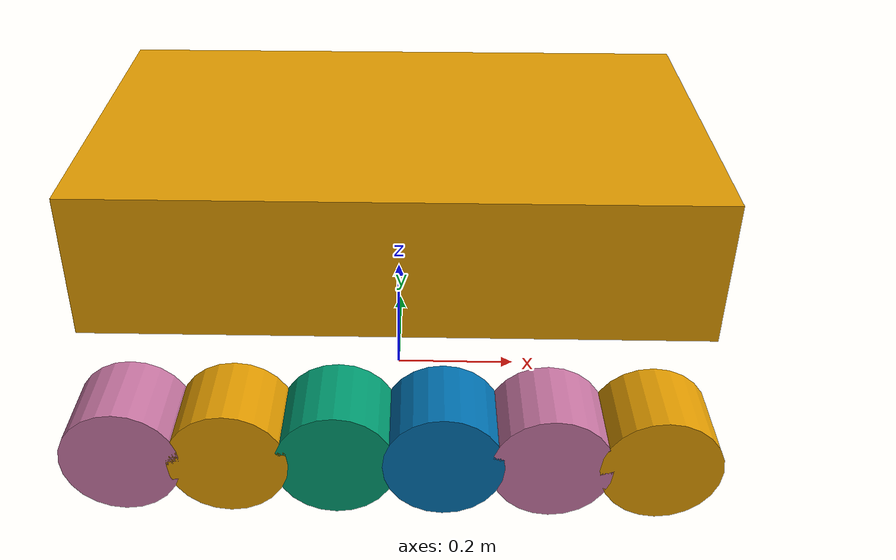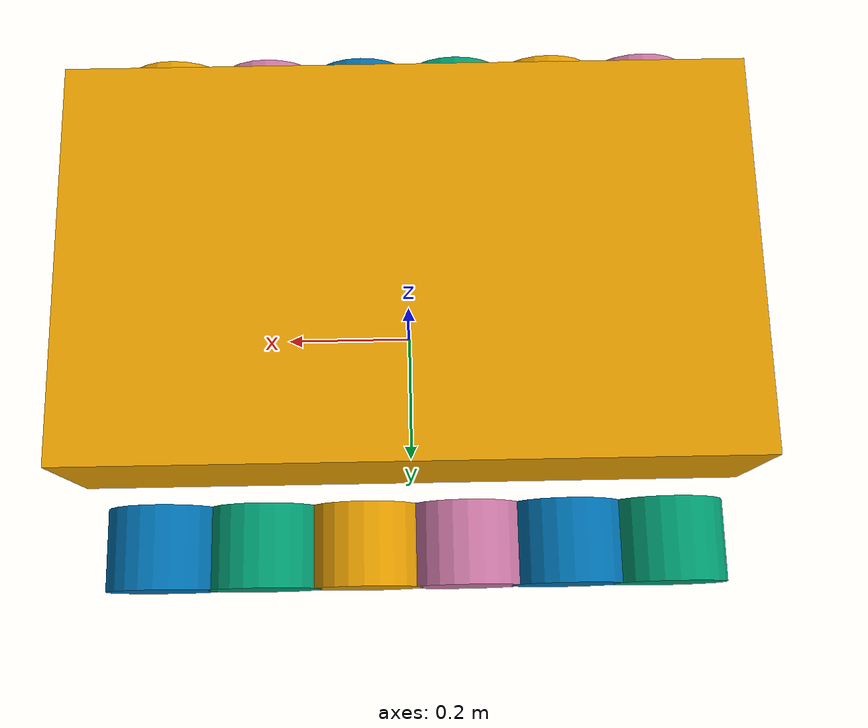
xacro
<?xml version='1.0'?>
<robot xmlns:xacro='http://www.ros.org/wiki/xacro' name='garden_tracked_bogie'>
  <xacro:property name='variant' value='tracked_bogie'/>
  <xacro:property name='mass_kg' value='65.0'/>
  <xacro:property name='track_gauge' value='0.7'/>
  <xacro:property name='wheel_radius' value='0.085'/>
  <xacro:property name='body_clearance' value='0.27'/>
  <link name='base_link'>
    <visual name='TRK3-BASE-001_visual'><origin xyz='0 0 0.36' rpy='0 0 0'/><geometry><box size='0.92 0.54 0.22'/></geometry></visual>
    <collision name='TRK3-BASE-001_collision'><origin xyz='0 0 0.36' rpy='0 0 0'/><geometry><box size='0.78 0.46 0.18'/></geometry></collision>
    <inertial><origin xyz='0 0 0.35' rpy='0 0 0'/><mass value='52.4'/><inertia ixx='1.4846666666666668' ixy='0' ixz='0' iyy='3.9072933333333335' iyz='0' izz='4.969266666666667'/></inertial>
  </link>
  <link name='left_carrier_0'/>
  <joint name='left_suspension_0' type='prismatic'><parent link='base_link'/><child link='left_carrier_0'/><origin xyz='-0.38 0.35 0.13' rpy='0 0 0'/><axis xyz='0 0 1'/><limit lower='-0.07' upper='0.07' effort='2500' velocity='1.5'/></joint>
  <link name='left_wheel'><visual name='TRK3-ROLLER-SUSP-001_visual_left_0'><geometry><cylinder radius='0.085' length='0.12'/></geometry></visual><collision name='TRK3-ROLLER-SUSP-001_collision_left_0'><geometry><cylinder radius='0.085' length='0.12'/></geometry></collision></link>
  <joint name='left_joint' type='continuous'><parent link='left_carrier_0'/><child link='left_wheel'/><origin xyz='0 0 0' rpy='1.57079632679 0 0'/><axis xyz='0 0 -1'/></joint>
  <link name='left_carrier_1'/>
  <joint name='left_suspension_1' type='prismatic'><parent link='base_link'/><child link='left_carrier_1'/><origin xyz='-0.23 0.35 0.13' rpy='0 0 0'/><axis xyz='0 0 1'/><limit lower='-0.07' upper='0.07' effort='2500' velocity='1.5'/></joint>
  <link name='left_wheel_1'><visual name='TRK3-ROLLER-SUSP-001_visual_left_1'><geometry><cylinder radius='0.085' length='0.12'/></geometry></visual><collision name='TRK3-ROLLER-SUSP-001_collision_left_1'><geometry><cylinder radius='0.085' length='0.12'/></geometry></collision></link>
  <joint name='left_joint_1' type='continuous'><parent link='left_carrier_1'/><child link='left_wheel_1'/><origin xyz='0 0 0' rpy='1.57079632679 0 0'/><axis xyz='0 0 -1'/></joint>
  <link name='left_carrier_2'/>
  <joint name='left_suspension_2' type='prismatic'><parent link='base_link'/><child link='left_carrier_2'/><origin xyz='-0.08 0.35 0.13' rpy='0 0 0'/><axis xyz='0 0 1'/><limit lower='-0.07' upper='0.07' effort='2500' velocity='1.5'/></joint>
  <link name='left_wheel_2'><visual name='TRK3-ROLLER-SUSP-001_visual_left_2'><geometry><cylinder radius='0.085' length='0.12'/></geometry></visual><collision name='TRK3-ROLLER-SUSP-001_collision_left_2'><geometry><cylinder radius='0.085' length='0.12'/></geometry></collision></link>
  <joint name='left_joint_2' type='continuous'><parent link='left_carrier_2'/><child link='left_wheel_2'/><origin xyz='0 0 0' rpy='1.57079632679 0 0'/><axis xyz='0 0 -1'/></joint>
  <link name='left_carrier_3'/>
  <joint name='left_suspension_3' type='prismatic'><parent link='base_link'/><child link='left_carrier_3'/><origin xyz='0.07 0.35 0.13' rpy='0 0 0'/><axis xyz='0 0 1'/><limit lower='-0.07' upper='0.07' effort='2500' velocity='1.5'/></joint>
  <link name='left_wheel_3'><visual name='TRK3-ROLLER-SUSP-001_visual_left_3'><geometry><cylinder radius='0.085' length='0.12'/></geometry></visual><collision name='TRK3-ROLLER-SUSP-001_collision_left_3'><geometry><cylinder radius='0.085' length='0.12'/></geometry></collision></link>
  <joint name='left_joint_3' type='continuous'><parent link='left_carrier_3'/><child link='left_wheel_3'/><origin xyz='0 0 0' rpy='1.57079632679 0 0'/><axis xyz='0 0 -1'/></joint>
  <link name='left_carrier_4'/>
  <joint name='left_suspension_4' type='prismatic'><parent link='base_link'/><child link='left_carrier_4'/><origin xyz='0.22 0.35 0.13' rpy='0 0 0'/><axis xyz='0 0 1'/><limit lower='-0.07' upper='0.07' effort='2500' velocity='1.5'/></joint>
  <link name='left_wheel_4'><visual name='TRK3-ROLLER-SUSP-001_visual_left_4'><geometry><cylinder radius='0.085' length='0.12'/></geometry></visual><collision name='TRK3-ROLLER-SUSP-001_collision_left_4'><geometry><cylinder radius='0.085' length='0.12'/></geometry></collision></link>
  <joint name='left_joint_4' type='continuous'><parent link='left_carrier_4'/><child link='left_wheel_4'/><origin xyz='0 0 0' rpy='1.57079632679 0 0'/><axis xyz='0 0 -1'/></joint>
  <link name='left_carrier_5'/>
  <joint name='left_suspension_5' type='prismatic'><parent link='base_link'/><child link='left_carrier_5'/><origin xyz='0.37 0.35 0.13' rpy='0 0 0'/><axis xyz='0 0 1'/><limit lower='-0.07' upper='0.07' effort='2500' velocity='1.5'/></joint>
  <link name='left_wheel_5'><visual name='TRK3-ROLLER-SUSP-001_visual_left_5'><geometry><cylinder radius='0.085' length='0.12'/></geometry></visual><collision name='TRK3-ROLLER-SUSP-001_collision_left_5'><geometry><cylinder radius='0.085' length='0.12'/></geometry></collision></link>
  <joint name='left_joint_5' type='continuous'><parent link='left_carrier_5'/><child link='left_wheel_5'/><origin xyz='0 0 0' rpy='1.57079632679 0 0'/><axis xyz='0 0 -1'/></joint>
  <link name='right_carrier_0'/>
  <joint name='right_suspension_0' type='prismatic'><parent link='base_link'/><child link='right_carrier_0'/><origin xyz='-0.38 -0.35 0.13' rpy='0 0 0'/><axis xyz='0 0 1'/><limit lower='-0.07' upper='0.07' effort='2500' velocity='1.5'/></joint>
  <link name='right_wheel'><visual name='TRK3-ROLLER-SUSP-001_visual_right_0'><geometry><cylinder radius='0.085' length='0.12'/></geometry></visual><collision name='TRK3-ROLLER-SUSP-001_collision_right_0'><geometry><cylinder radius='0.085' length='0.12'/></geometry></collision></link>
  <joint name='right_joint' type='continuous'><parent link='right_carrier_0'/><child link='right_wheel'/><origin xyz='0 0 0' rpy='1.57079632679 0 0'/><axis xyz='0 0 -1'/></joint>
  <link name='right_carrier_1'/>
  <joint name='right_suspension_1' type='prismatic'><parent link='base_link'/><child link='right_carrier_1'/><origin xyz='-0.23 -0.35 0.13' rpy='0 0 0'/><axis xyz='0 0 1'/><limit lower='-0.07' upper='0.07' effort='2500' velocity='1.5'/></joint>
  <link name='right_wheel_1'><visual name='TRK3-ROLLER-SUSP-001_visual_right_1'><geometry><cylinder radius='0.085' length='0.12'/></geometry></visual><collision name='TRK3-ROLLER-SUSP-001_collision_right_1'><geometry><cylinder radius='0.085' length='0.12'/></geometry></collision></link>
  <joint name='right_joint_1' type='continuous'><parent link='right_carrier_1'/><child link='right_wheel_1'/><origin xyz='0 0 0' rpy='1.57079632679 0 0'/><axis xyz='0 0 -1'/></joint>
  <link name='right_carrier_2'/>
  <joint name='right_suspension_2' type='prismatic'><parent link='base_link'/><child link='right_carrier_2'/><origin xyz='-0.08 -0.35 0.13' rpy='0 0 0'/><axis xyz='0 0 1'/><limit lower='-0.07' upper='0.07' effort='2500' velocity='1.5'/></joint>
  <link name='right_wheel_2'><visual name='TRK3-ROLLER-SUSP-001_visual_right_2'><geometry><cylinder radius='0.085' length='0.12'/></geometry></visual><collision name='TRK3-ROLLER-SUSP-001_collision_right_2'><geometry><cylinder radius='0.085' length='0.12'/></geometry></collision></link>
  <joint name='right_joint_2' type='continuous'><parent link='right_carrier_2'/><child link='right_wheel_2'/><origin xyz='0 0 0' rpy='1.57079632679 0 0'/><axis xyz='0 0 -1'/></joint>
  <link name='right_carrier_3'/>
  <joint name='right_suspension_3' type='prismatic'><parent link='base_link'/><child link='right_carrier_3'/><origin xyz='0.07 -0.35 0.13' rpy='0 0 0'/><axis xyz='0 0 1'/><limit lower='-0.07' upper='0.07' effort='2500' velocity='1.5'/></joint>
  <link name='right_wheel_3'><visual name='TRK3-ROLLER-SUSP-001_visual_right_3'><geometry><cylinder radius='0.085' length='0.12'/></geometry></visual><collision name='TRK3-ROLLER-SUSP-001_collision_right_3'><geometry><cylinder radius='0.085' length='0.12'/></geometry></collision></link>
  <joint name='right_joint_3' type='continuous'><parent link='right_carrier_3'/><child link='right_wheel_3'/><origin xyz='0 0 0' rpy='1.57079632679 0 0'/><axis xyz='0 0 -1'/></joint>
  <link name='right_carrier_4'/>
  <joint name='right_suspension_4' type='prismatic'><parent link='base_link'/><child link='right_carrier_4'/><origin xyz='0.22 -0.35 0.13' rpy='0 0 0'/><axis xyz='0 0 1'/><limit lower='-0.07' upper='0.07' effort='2500' velocity='1.5'/></joint>
  <link name='right_wheel_4'><visual name='TRK3-ROLLER-SUSP-001_visual_right_4'><geometry><cylinder radius='0.085' length='0.12'/></geometry></visual><collision name='TRK3-ROLLER-SUSP-001_collision_right_4'><geometry><cylinder radius='0.085' length='0.12'/></geometry></collision></link>
  <joint name='right_joint_4' type='continuous'><parent link='right_carrier_4'/><child link='right_wheel_4'/><origin xyz='0 0 0' rpy='1.57079632679 0 0'/><axis xyz='0 0 -1'/></joint>
  <link name='right_carrier_5'/>
  <joint name='right_suspension_5' type='prismatic'><parent link='base_link'/><child link='right_carrier_5'/><origin xyz='0.37 -0.35 0.13' rpy='0 0 0'/><axis xyz='0 0 1'/><limit lower='-0.07' upper='0.07' effort='2500' velocity='1.5'/></joint>
  <link name='right_wheel_5'><visual name='TRK3-ROLLER-SUSP-001_visual_right_5'><geometry><cylinder radius='0.085' length='0.12'/></geometry></visual><collision name='TRK3-ROLLER-SUSP-001_collision_right_5'><geometry><cylinder radius='0.085' length='0.12'/></geometry></collision></link>
  <joint name='right_joint_5' type='continuous'><parent link='right_carrier_5'/><child link='right_wheel_5'/><origin xyz='0 0 0' rpy='1.57079632679 0 0'/><axis xyz='0 0 -1'/></joint>
  <!-- Future CAD references: TRK3-BASE-001, TRK3-BELT-VIS-001, TRK3-ROLLER-SUSP-001. Visual and collision geometry remain separate. -->
</robot>
